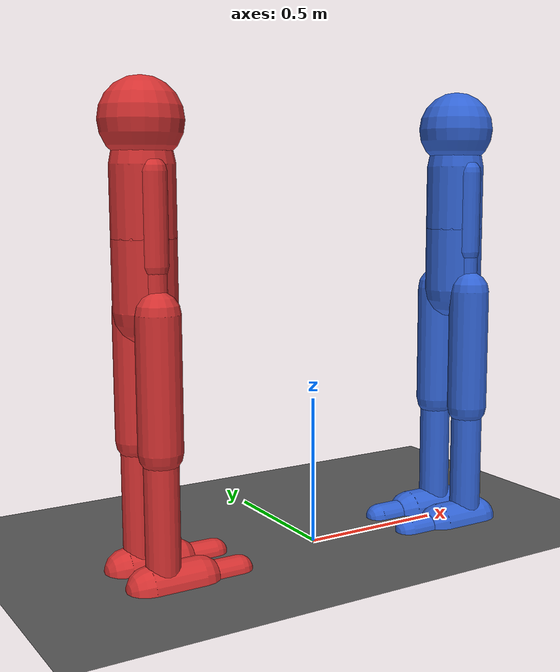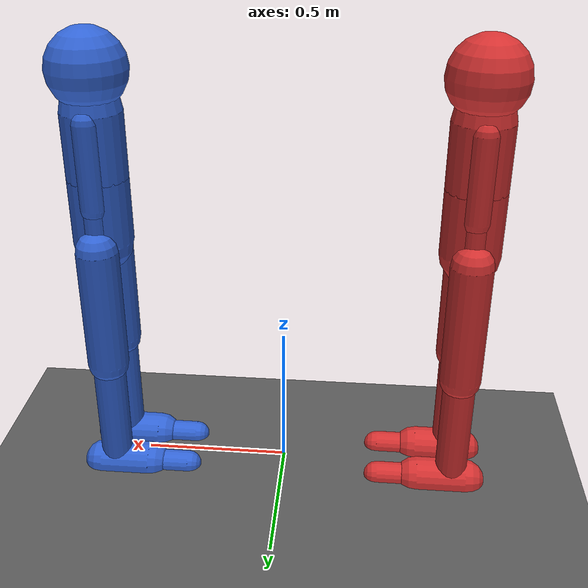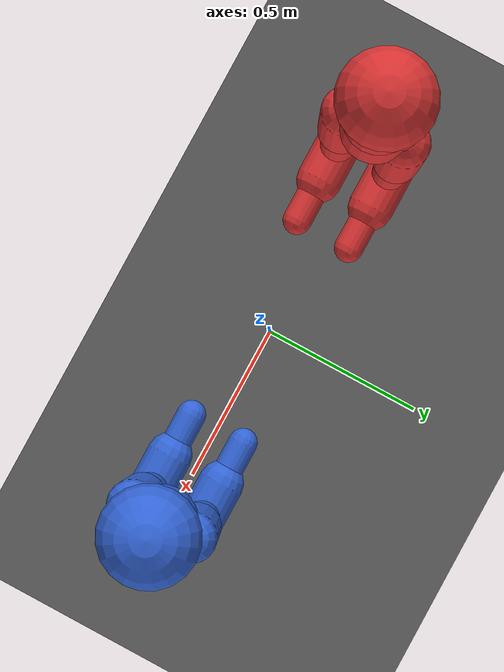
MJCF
<mujoco model="fighter2d">
  <compiler angle="degree"/>
  <option gravity="0 0 -9.81" timestep="0.005"/>

  <visual>
    <headlight ambient="0.4 0.4 0.4"/>
  </visual>

  <asset>
    <texture type="skybox" builtin="gradient" rgb1="0.6 0.7 0.9" rgb2="0.1 0.1 0.2" width="256" height="256"/>
    <texture name="grid" type="2d" builtin="checker" rgb1="0.3 0.3 0.3" rgb2="0.4 0.4 0.4" width="300" height="300"/>
    <material name="grid" texture="grid" texrepeat="6 6" reflectance="0.1"/>
  </asset>

  <worldbody>
    <light pos="0 -2 3" dir="0 0.5 -1" diffuse="0.8 0.8 0.8"/>
    <geom name="floor" type="plane" size="5 3 0.1" material="grid" friction="1.0 0.01 0.01"/>
    <camera name="side" pos="0 -4.5 1.1" xyaxes="1 0 0 0 0 1"/>

    <body name="a_torso" pos="-0.6 0 1.06">
      <joint name="a_root_x" type="slide" axis="1 0 0" limited="false" damping="0.5"/>
      <joint name="a_root_z" type="slide" axis="0 0 1" limited="false" damping="0.5"/>
      <joint name="a_root_ry" type="hinge" axis="0 -1 0" limited="false" damping="0.5"/>
      <geom name="a_pelvis" type="capsule" fromto="0 0 -0.22 0 0 0" size="0.10" density="1440" rgba="0.85 0.2 0.2 1"/>

      <body name="a_chest" pos="0 0 0">
        <joint name="a_waist" type="hinge" axis="0 -1 0" range="-20 45" damping="2" armature="0.02"/>
        <geom name="a_chest" type="capsule" fromto="0 0 0 0 0 0.22" size="0.10" density="1440" rgba="0.85 0.2 0.2 1"/>

        <body name="a_head" pos="0 0 0.22">
          <joint name="a_head" type="hinge" axis="0 -1 0" range="-40 40" damping="1" armature="0.01"/>
          <geom name="a_head" type="sphere" size="0.13" pos="0 0 0.13" density="600" rgba="0.85 0.2 0.2 1"/>
        </body>

        <body name="a_upper_arm_r" pos="0 -0.07 0.20">
          <joint name="a_shoulder_r" type="hinge" axis="0 -1 0" range="-50 160" damping="1" armature="0.01"/>
          <geom name="a_upper_arm_r" type="capsule" fromto="0 0 0 0 0 -0.28" size="0.045" rgba="0.85 0.2 0.2 1"/>
          <body name="a_forearm_r" pos="0 0 -0.28">
            <joint name="a_elbow_r" type="hinge" axis="0 -1 0" range="-150 0" damping="1" armature="0.01"/>
            <geom name="a_forearm_r" type="capsule" fromto="0 0 0 0 0 -0.25" size="0.04" rgba="0.85 0.2 0.2 1"/>
          </body>
        </body>

        <body name="a_upper_arm_l" pos="0 0.07 0.20">
          <joint name="a_shoulder_l" type="hinge" axis="0 -1 0" range="-50 160" damping="1" armature="0.01"/>
          <geom name="a_upper_arm_l" type="capsule" fromto="0 0 0 0 0 -0.28" size="0.045" rgba="0.85 0.2 0.2 1"/>
          <body name="a_forearm_l" pos="0 0 -0.28">
            <joint name="a_elbow_l" type="hinge" axis="0 -1 0" range="-150 0" damping="1" armature="0.01"/>
            <geom name="a_forearm_l" type="capsule" fromto="0 0 0 0 0 -0.25" size="0.04" rgba="0.85 0.2 0.2 1"/>
          </body>
        </body>
      </body>

      <body name="a_thigh_r" pos="0 -0.09 -0.22">
        <joint name="a_hip_r" type="hinge" axis="0 -1 0" range="-20 120" damping="3" armature="0.02"/>
        <geom name="a_thigh_r" type="capsule" fromto="0 0 0 0 0 -0.42" size="0.07" density="650" rgba="0.85 0.2 0.2 1"/>
        <body name="a_shin_r" pos="0 0 -0.42">
          <joint name="a_knee_r" type="hinge" axis="0 -1 0" range="-140 0" damping="3" armature="0.02"/>
          <geom name="a_shin_r" type="capsule" fromto="0 0 0 0 0 -0.42" size="0.055" density="650" rgba="0.85 0.2 0.2 1"/>
          <body name="a_foot_r" pos="0 0 -0.42">
            <joint name="a_ankle_r" type="hinge" axis="0 -1 0" range="-30 30" damping="1.5" armature="0.02"/>
            <!-- density 400 (default 1000): foot ~1.6 kg instead of ~4 kg, closer to human foot mass share -->
            <geom name="a_foot_r" type="capsule" fromto="-0.05 0 0 0.12 0 0" size="0.07" density="400" rgba="0.85 0.2 0.2 1"/>
            <site name="a_foot_r" pos="0 0 0" size="0.02"/>
            <body name="a_toe_r" pos="0.12 0 0">
              <joint name="a_toe_r" type="hinge" axis="0 -1 0" range="-10 45" stiffness="8" damping="0.5" armature="0.01"/>
              <geom name="a_toe_r" type="capsule" fromto="0 0 0 0.14 0 0" size="0.045" density="650" rgba="0.85 0.2 0.2 1"/>
            </body>
          </body>
        </body>
      </body>

      <body name="a_thigh_l" pos="0 0.09 -0.22">
        <joint name="a_hip_l" type="hinge" axis="0 -1 0" range="-20 120" damping="3" armature="0.02"/>
        <geom name="a_thigh_l" type="capsule" fromto="0 0 0 0 0 -0.42" size="0.07" density="650" rgba="0.85 0.2 0.2 1"/>
        <body name="a_shin_l" pos="0 0 -0.42">
          <joint name="a_knee_l" type="hinge" axis="0 -1 0" range="-140 0" damping="3" armature="0.02"/>
          <geom name="a_shin_l" type="capsule" fromto="0 0 0 0 0 -0.42" size="0.055" density="650" rgba="0.85 0.2 0.2 1"/>
          <body name="a_foot_l" pos="0 0 -0.42">
            <joint name="a_ankle_l" type="hinge" axis="0 -1 0" range="-30 30" damping="1.5" armature="0.02"/>
            <!-- density 400 (default 1000): foot ~1.6 kg instead of ~4 kg, closer to human foot mass share -->
            <geom name="a_foot_l" type="capsule" fromto="-0.05 0 0 0.12 0 0" size="0.07" density="400" rgba="0.85 0.2 0.2 1"/>
            <site name="a_foot_l" pos="0 0 0" size="0.02"/>
            <body name="a_toe_l" pos="0.12 0 0">
              <joint name="a_toe_l" type="hinge" axis="0 -1 0" range="-10 45" stiffness="8" damping="0.5" armature="0.01"/>
              <geom name="a_toe_l" type="capsule" fromto="0 0 0 0.14 0 0" size="0.045" density="650" rgba="0.85 0.2 0.2 1"/>
            </body>
          </body>
        </body>
      </body>
    </body>

    <body name="b_torso" pos="0.6 0 1.06">
      <joint name="b_root_x" type="slide" axis="1 0 0" limited="false" damping="0.5"/>
      <joint name="b_root_z" type="slide" axis="0 0 1" limited="false" damping="0.5"/>
      <joint name="b_root_ry" type="hinge" axis="0 1 0" limited="false" damping="0.5"/>
      <geom name="b_pelvis" type="capsule" fromto="0 0 -0.22 0 0 0" size="0.10" density="1440" rgba="0.2 0.4 0.85 1"/>

      <body name="b_chest" pos="0 0 0">
        <joint name="b_waist" type="hinge" axis="0 1 0" range="-20 45" damping="2" armature="0.02"/>
        <geom name="b_chest" type="capsule" fromto="0 0 0 0 0 0.22" size="0.10" density="1440" rgba="0.2 0.4 0.85 1"/>

        <body name="b_head" pos="0 0 0.22">
          <joint name="b_head" type="hinge" axis="0 1 0" range="-40 40" damping="1" armature="0.01"/>
          <geom name="b_head" type="sphere" size="0.13" pos="0 0 0.13" density="600" rgba="0.2 0.4 0.85 1"/>
        </body>

        <body name="b_upper_arm_r" pos="0 -0.07 0.20">
          <joint name="b_shoulder_r" type="hinge" axis="0 1 0" range="-50 160" damping="1" armature="0.01"/>
          <geom name="b_upper_arm_r" type="capsule" fromto="0 0 0 0 0 -0.28" size="0.045" rgba="0.2 0.4 0.85 1"/>
          <body name="b_forearm_r" pos="0 0 -0.28">
            <joint name="b_elbow_r" type="hinge" axis="0 1 0" range="-150 0" damping="1" armature="0.01"/>
            <geom name="b_forearm_r" type="capsule" fromto="0 0 0 0 0 -0.25" size="0.04" rgba="0.2 0.4 0.85 1"/>
          </body>
        </body>

        <body name="b_upper_arm_l" pos="0 0.07 0.20">
          <joint name="b_shoulder_l" type="hinge" axis="0 1 0" range="-50 160" damping="1" armature="0.01"/>
          <geom name="b_upper_arm_l" type="capsule" fromto="0 0 0 0 0 -0.28" size="0.045" rgba="0.2 0.4 0.85 1"/>
          <body name="b_forearm_l" pos="0 0 -0.28">
            <joint name="b_elbow_l" type="hinge" axis="0 1 0" range="-150 0" damping="1" armature="0.01"/>
            <geom name="b_forearm_l" type="capsule" fromto="0 0 0 0 0 -0.25" size="0.04" rgba="0.2 0.4 0.85 1"/>
          </body>
        </body>
      </body>

      <body name="b_thigh_r" pos="0 -0.09 -0.22">
        <joint name="b_hip_r" type="hinge" axis="0 1 0" range="-20 120" damping="3" armature="0.02"/>
        <geom name="b_thigh_r" type="capsule" fromto="0 0 0 0 0 -0.42" size="0.07" density="650" rgba="0.2 0.4 0.85 1"/>
        <body name="b_shin_r" pos="0 0 -0.42">
          <joint name="b_knee_r" type="hinge" axis="0 1 0" range="-140 0" damping="3" armature="0.02"/>
          <geom name="b_shin_r" type="capsule" fromto="0 0 0 0 0 -0.42" size="0.055" density="650" rgba="0.2 0.4 0.85 1"/>
          <body name="b_foot_r" pos="0 0 -0.42">
            <joint name="b_ankle_r" type="hinge" axis="0 1 0" range="-30 30" damping="1.5" armature="0.02"/>
            <!-- density 400 (default 1000): foot ~1.6 kg instead of ~4 kg, closer to human foot mass share -->
            <geom name="b_foot_r" type="capsule" fromto="0.05 0 0 -0.12 0 0" size="0.07" density="400" rgba="0.2 0.4 0.85 1"/>
            <site name="b_foot_r" pos="0 0 0" size="0.02"/>
            <body name="b_toe_r" pos="-0.12 0 0">
              <joint name="b_toe_r" type="hinge" axis="0 1 0" range="-10 45" stiffness="8" damping="0.5" armature="0.01"/>
              <geom name="b_toe_r" type="capsule" fromto="0 0 0 -0.14 0 0" size="0.045" density="650" rgba="0.2 0.4 0.85 1"/>
            </body>
          </body>
        </body>
      </body>

      <body name="b_thigh_l" pos="0 0.09 -0.22">
        <joint name="b_hip_l" type="hinge" axis="0 1 0" range="-20 120" damping="3" armature="0.02"/>
        <geom name="b_thigh_l" type="capsule" fromto="0 0 0 0 0 -0.42" size="0.07" density="650" rgba="0.2 0.4 0.85 1"/>
        <body name="b_shin_l" pos="0 0 -0.42">
          <joint name="b_knee_l" type="hinge" axis="0 1 0" range="-140 0" damping="3" armature="0.02"/>
          <geom name="b_shin_l" type="capsule" fromto="0 0 0 0 0 -0.42" size="0.055" density="650" rgba="0.2 0.4 0.85 1"/>
          <body name="b_foot_l" pos="0 0 -0.42">
            <joint name="b_ankle_l" type="hinge" axis="0 1 0" range="-30 30" damping="1.5" armature="0.02"/>
            <!-- density 400 (default 1000): foot ~1.6 kg instead of ~4 kg, closer to human foot mass share -->
            <geom name="b_foot_l" type="capsule" fromto="0.05 0 0 -0.12 0 0" size="0.07" density="400" rgba="0.2 0.4 0.85 1"/>
            <site name="b_foot_l" pos="0 0 0" size="0.02"/>
            <body name="b_toe_l" pos="-0.12 0 0">
              <joint name="b_toe_l" type="hinge" axis="0 1 0" range="-10 45" stiffness="8" damping="0.5" armature="0.01"/>
              <geom name="b_toe_l" type="capsule" fromto="0 0 0 -0.14 0 0" size="0.045" density="650" rgba="0.2 0.4 0.85 1"/>
            </body>
          </body>
        </body>
      </body>
    </body>

  </worldbody>

  <actuator>
    <motor name="a_root_x" joint="a_root_x" gear="90" ctrlrange="-1 1"/>
    <motor name="a_root_ry" joint="a_root_ry" gear="250" ctrlrange="-1 1"/>
    <motor name="a_waist" joint="a_waist" gear="70" ctrlrange="-1 1"/>
    <motor name="a_head" joint="a_head" gear="20" ctrlrange="-1 1"/>
    <motor name="a_shoulder_r" joint="a_shoulder_r" gear="45" ctrlrange="-1 1"/>
    <motor name="a_elbow_r" joint="a_elbow_r" gear="30" ctrlrange="-1 1"/>
    <motor name="a_shoulder_l" joint="a_shoulder_l" gear="45" ctrlrange="-1 1"/>
    <motor name="a_elbow_l" joint="a_elbow_l" gear="30" ctrlrange="-1 1"/>
    <motor name="a_hip_r" joint="a_hip_r" gear="180" ctrlrange="-1 1"/>
    <motor name="a_knee_r" joint="a_knee_r" gear="60" ctrlrange="-1 1"/>
    <motor name="a_ankle_r" joint="a_ankle_r" gear="40" ctrlrange="-1 1"/>
    <motor name="a_hip_l" joint="a_hip_l" gear="180" ctrlrange="-1 1"/>
    <motor name="a_knee_l" joint="a_knee_l" gear="60" ctrlrange="-1 1"/>
    <motor name="a_ankle_l" joint="a_ankle_l" gear="40" ctrlrange="-1 1"/>
    <motor name="b_root_x" joint="b_root_x" gear="90" ctrlrange="-1 1"/>
    <motor name="b_root_ry" joint="b_root_ry" gear="250" ctrlrange="-1 1"/>
    <motor name="b_waist" joint="b_waist" gear="70" ctrlrange="-1 1"/>
    <motor name="b_head" joint="b_head" gear="20" ctrlrange="-1 1"/>
    <motor name="b_shoulder_r" joint="b_shoulder_r" gear="45" ctrlrange="-1 1"/>
    <motor name="b_elbow_r" joint="b_elbow_r" gear="30" ctrlrange="-1 1"/>
    <motor name="b_shoulder_l" joint="b_shoulder_l" gear="45" ctrlrange="-1 1"/>
    <motor name="b_elbow_l" joint="b_elbow_l" gear="30" ctrlrange="-1 1"/>
    <motor name="b_hip_r" joint="b_hip_r" gear="180" ctrlrange="-1 1"/>
    <motor name="b_knee_r" joint="b_knee_r" gear="60" ctrlrange="-1 1"/>
    <motor name="b_ankle_r" joint="b_ankle_r" gear="40" ctrlrange="-1 1"/>
    <motor name="b_hip_l" joint="b_hip_l" gear="180" ctrlrange="-1 1"/>
    <motor name="b_knee_l" joint="b_knee_l" gear="60" ctrlrange="-1 1"/>
    <motor name="b_ankle_l" joint="b_ankle_l" gear="40" ctrlrange="-1 1"/>
  </actuator>
</mujoco>
